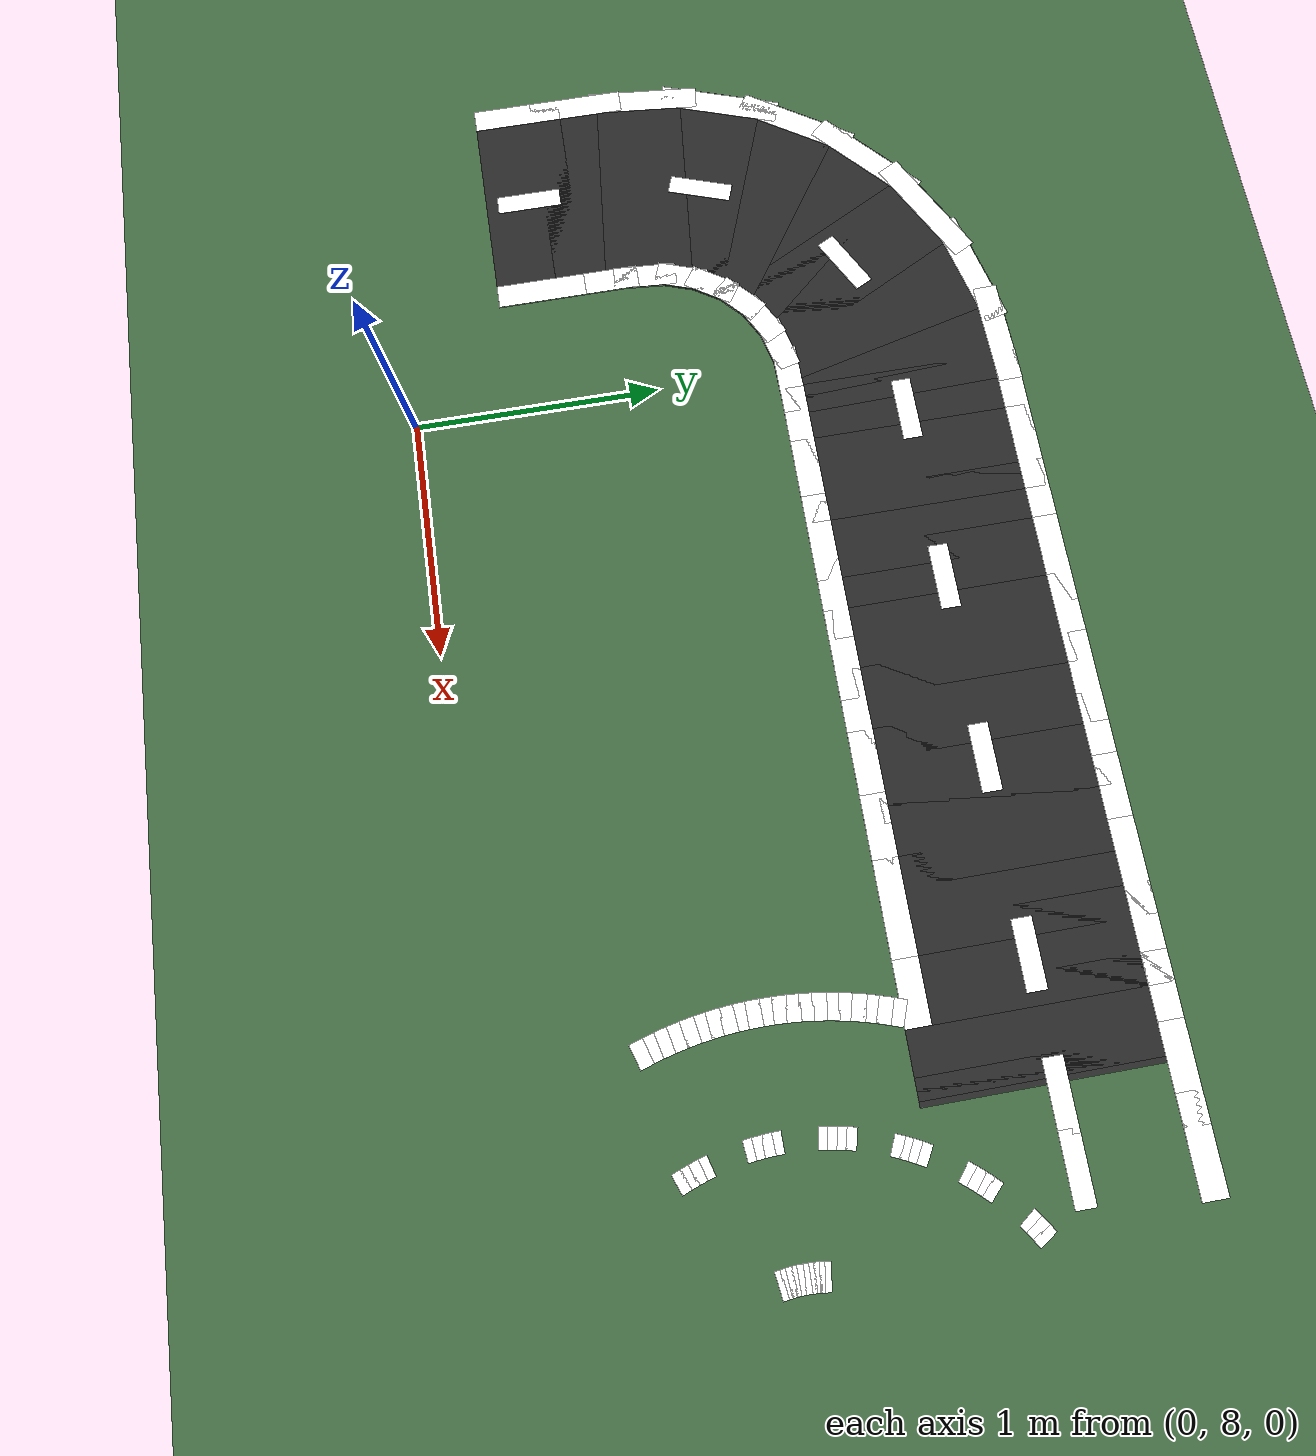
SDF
<sdf version="1.6">
 <world name="university_track">
  <model name="ground_plane">
   <static>true</static>
   <link name="link">
    <collision name="collision">
     <geometry><plane><normal>0 0 1</normal><size>200 200</size></plane></geometry>
    </collision>
    <visual name="visual">
     <geometry><plane><normal>0 0 1</normal><size>200 200</size></plane></geometry>
     <material><ambient>0.25 0.40 0.25 1</ambient><diffuse>0.25 0.40 0.25 1</diffuse></material>
    </visual>
   </link>
  </model>
  <model name="loop_40_0">
   <static>true</static>
   <pose>2.9201 10.0000 0.0020 0 0 3.14159</pose>
   <link name="l">
    <visual name="v">
     <geometry><box><size>0.1037 1.0000 0.0020</size></box></geometry>
     <material><ambient>0.15 0.15 0.15 1</ambient><diffuse>0.15 0.15 0.15 1</diffuse></material>
    </visual>
   </link>
  </model>
  <model name="loop_41_0">
   <static>true</static>
   <pose>2.7652 10.0000 0.0020 0 0 3.14159</pose>
   <link name="l">
    <visual name="v">
     <geometry><box><size>0.3700 1.0000 0.0020</size></box></geometry>
     <material><ambient>0.15 0.15 0.15 1</ambient><diffuse>0.15 0.15 0.15 1</diffuse></material>
    </visual>
   </link>
  </model>
  <model name="loop_42_0">
   <static>true</static>
   <pose>2.5152 10.0000 0.0020 0 0 3.14159</pose>
   <link name="l">
    <visual name="v">
     <geometry><box><size>0.3700 1.0000 0.0020</size></box></geometry>
     <material><ambient>0.15 0.15 0.15 1</ambient><diffuse>0.15 0.15 0.15 1</diffuse></material>
    </visual>
   </link>
  </model>
  <model name="loop_43_0">
   <static>true</static>
   <pose>2.2652 10.0000 0.0020 0 0 3.14159</pose>
   <link name="l">
    <visual name="v">
     <geometry><box><size>0.3700 1.0000 0.0020</size></box></geometry>
     <material><ambient>0.15 0.15 0.15 1</ambient><diffuse>0.15 0.15 0.15 1</diffuse></material>
    </visual>
   </link>
  </model>
  <model name="loop_44_0">
   <static>true</static>
   <pose>2.0152 10.0000 0.0020 0 0 3.14159</pose>
   <link name="l">
    <visual name="v">
     <geometry><box><size>0.3700 1.0000 0.0020</size></box></geometry>
     <material><ambient>0.15 0.15 0.15 1</ambient><diffuse>0.15 0.15 0.15 1</diffuse></material>
    </visual>
   </link>
  </model>
  <model name="loop_45_0">
   <static>true</static>
   <pose>1.7652 10.0000 0.0020 0 0 3.14159</pose>
   <link name="l">
    <visual name="v">
     <geometry><box><size>0.3700 1.0000 0.0020</size></box></geometry>
     <material><ambient>0.15 0.15 0.15 1</ambient><diffuse>0.15 0.15 0.15 1</diffuse></material>
    </visual>
   </link>
  </model>
  <model name="loop_46_0">
   <static>true</static>
   <pose>1.5152 10.0000 0.0020 0 0 3.14159</pose>
   <link name="l">
    <visual name="v">
     <geometry><box><size>0.3700 1.0000 0.0020</size></box></geometry>
     <material><ambient>0.15 0.15 0.15 1</ambient><diffuse>0.15 0.15 0.15 1</diffuse></material>
    </visual>
   </link>
  </model>
  <model name="loop_47_0">
   <static>true</static>
   <pose>1.2652 10.0000 0.0020 0 0 3.14159</pose>
   <link name="l">
    <visual name="v">
     <geometry><box><size>0.3700 1.0000 0.0020</size></box></geometry>
     <material><ambient>0.15 0.15 0.15 1</ambient><diffuse>0.15 0.15 0.15 1</diffuse></material>
    </visual>
   </link>
  </model>
  <model name="loop_48_0">
   <static>true</static>
   <pose>1.0152 10.0000 0.0020 0 0 3.14159</pose>
   <link name="l">
    <visual name="v">
     <geometry><box><size>0.3700 1.0000 0.0020</size></box></geometry>
     <material><ambient>0.15 0.15 0.15 1</ambient><diffuse>0.15 0.15 0.15 1</diffuse></material>
    </visual>
   </link>
  </model>
  <model name="loop_49_0">
   <static>true</static>
   <pose>0.7652 10.0000 0.0020 0 0 3.14159</pose>
   <link name="l">
    <visual name="v">
     <geometry><box><size>0.3700 1.0000 0.0020</size></box></geometry>
     <material><ambient>0.15 0.15 0.15 1</ambient><diffuse>0.15 0.15 0.15 1</diffuse></material>
    </visual>
   </link>
  </model>
  <model name="loop_50_0">
   <static>true</static>
   <pose>0.5152 10.0000 0.0020 0 0 3.14159</pose>
   <link name="l">
    <visual name="v">
     <geometry><box><size>0.3700 1.0000 0.0020</size></box></geometry>
     <material><ambient>0.15 0.15 0.15 1</ambient><diffuse>0.15 0.15 0.15 1</diffuse></material>
    </visual>
   </link>
  </model>
  <model name="loop_51_0">
   <static>true</static>
   <pose>0.2652 10.0000 0.0020 0 0 3.14159</pose>
   <link name="l">
    <visual name="v">
     <geometry><box><size>0.3700 1.0000 0.0020</size></box></geometry>
     <material><ambient>0.15 0.15 0.15 1</ambient><diffuse>0.15 0.15 0.15 1</diffuse></material>
    </visual>
   </link>
  </model>
  <model name="loop_52_0">
   <static>true</static>
   <pose>0.0153 9.9969 0.0020 0 0 -3.11645</pose>
   <link name="l">
    <visual name="v">
     <geometry><box><size>0.3698 1.0000 0.0020</size></box></geometry>
     <material><ambient>0.15 0.15 0.15 1</ambient><diffuse>0.15 0.15 0.15 1</diffuse></material>
    </visual>
   </link>
  </model>
  <model name="loop_53_0">
   <static>true</static>
   <pose>-0.2307 9.9642 0.0020 0 0 -2.90233</pose>
   <link name="l">
    <visual name="v">
     <geometry><box><size>0.3690 1.0000 0.0020</size></box></geometry>
     <material><ambient>0.15 0.15 0.15 1</ambient><diffuse>0.15 0.15 0.15 1</diffuse></material>
    </visual>
   </link>
  </model>
  <model name="loop_54_0">
   <static>true</static>
   <pose>-0.4621 9.8768 0.0020 0 0 -2.65879</pose>
   <link name="l">
    <visual name="v">
     <geometry><box><size>0.3689 1.0000 0.0020</size></box></geometry>
     <material><ambient>0.15 0.15 0.15 1</ambient><diffuse>0.15 0.15 0.15 1</diffuse></material>
    </visual>
   </link>
  </model>
  <model name="loop_55_0">
   <static>true</static>
   <pose>-0.6649 9.7353 0.0020 0 0 -2.40591</pose>
   <link name="l">
    <visual name="v">
     <geometry><box><size>0.3689 1.0000 0.0020</size></box></geometry>
     <material><ambient>0.15 0.15 0.15 1</ambient><diffuse>0.15 0.15 0.15 1</diffuse></material>
    </visual>
   </link>
  </model>
  <model name="loop_56_0">
   <static>true</static>
   <pose>-0.8260 9.5477 0.0020 0 0 -2.15479</pose>
   <link name="l">
    <visual name="v">
     <geometry><box><size>0.3689 1.0000 0.0020</size></box></geometry>
     <material><ambient>0.15 0.15 0.15 1</ambient><diffuse>0.15 0.15 0.15 1</diffuse></material>
    </visual>
   </link>
  </model>
  <model name="loop_57_0">
   <static>true</static>
   <pose>-0.9363 9.3263 0.0020 0 0 -1.91125</pose>
   <link name="l">
    <visual name="v">
     <geometry><box><size>0.3690 1.0000 0.0020</size></box></geometry>
     <material><ambient>0.15 0.15 0.15 1</ambient><diffuse>0.15 0.15 0.15 1</diffuse></material>
    </visual>
   </link>
  </model>
  <model name="loop_58_0">
   <static>true</static>
   <pose>-0.9890 9.0845 0.0020 0 0 -1.65945</pose>
   <link name="l">
    <visual name="v">
     <geometry><box><size>0.3693 1.0000 0.0020</size></box></geometry>
     <material><ambient>0.15 0.15 0.15 1</ambient><diffuse>0.15 0.15 0.15 1</diffuse></material>
    </visual>
   </link>
  </model>
  <model name="loop_59_0">
   <static>true</static>
   <pose>-1.0000 8.8353 0.0020 0 0 -1.57080</pose>
   <link name="l">
    <visual name="v">
     <geometry><box><size>0.3700 1.0000 0.0020</size></box></geometry>
     <material><ambient>0.15 0.15 0.15 1</ambient><diffuse>0.15 0.15 0.15 1</diffuse></material>
    </visual>
   </link>
  </model>
  <model name="loop_60_0">
   <static>true</static>
   <pose>-1.0000 8.5853 0.0020 0 0 -1.57080</pose>
   <link name="l">
    <visual name="v">
     <geometry><box><size>0.3700 1.0000 0.0020</size></box></geometry>
     <material><ambient>0.15 0.15 0.15 1</ambient><diffuse>0.15 0.15 0.15 1</diffuse></material>
    </visual>
   </link>
  </model>
  <model name="loop_le_42_0">
   <static>true</static>
   <pose>2.5152 9.5500 0.0050 0 0 3.14159</pose>
   <link name="l">
    <visual name="v">
     <geometry><box><size>0.3700 0.1000 0.0020</size></box></geometry>
     <material><ambient>1.0 1.0 1.0 1</ambient><diffuse>1.0 1.0 1.0 1</diffuse></material>
    </visual>
   </link>
  </model>
  <model name="loop_le_43_0">
   <static>true</static>
   <pose>2.2652 9.5500 0.0050 0 0 3.14159</pose>
   <link name="l">
    <visual name="v">
     <geometry><box><size>0.3700 0.1000 0.0020</size></box></geometry>
     <material><ambient>1.0 1.0 1.0 1</ambient><diffuse>1.0 1.0 1.0 1</diffuse></material>
    </visual>
   </link>
  </model>
  <model name="loop_le_44_0">
   <static>true</static>
   <pose>2.0152 9.5500 0.0050 0 0 3.14159</pose>
   <link name="l">
    <visual name="v">
     <geometry><box><size>0.3700 0.1000 0.0020</size></box></geometry>
     <material><ambient>1.0 1.0 1.0 1</ambient><diffuse>1.0 1.0 1.0 1</diffuse></material>
    </visual>
   </link>
  </model>
  <model name="loop_le_45_0">
   <static>true</static>
   <pose>1.7652 9.5500 0.0050 0 0 3.14159</pose>
   <link name="l">
    <visual name="v">
     <geometry><box><size>0.3700 0.1000 0.0020</size></box></geometry>
     <material><ambient>1.0 1.0 1.0 1</ambient><diffuse>1.0 1.0 1.0 1</diffuse></material>
    </visual>
   </link>
  </model>
  <model name="loop_le_46_0">
   <static>true</static>
   <pose>1.5152 9.5500 0.0050 0 0 3.14159</pose>
   <link name="l">
    <visual name="v">
     <geometry><box><size>0.3700 0.1000 0.0020</size></box></geometry>
     <material><ambient>1.0 1.0 1.0 1</ambient><diffuse>1.0 1.0 1.0 1</diffuse></material>
    </visual>
   </link>
  </model>
  <model name="loop_le_47_0">
   <static>true</static>
   <pose>1.2652 9.5500 0.0050 0 0 3.14159</pose>
   <link name="l">
    <visual name="v">
     <geometry><box><size>0.3700 0.1000 0.0020</size></box></geometry>
     <material><ambient>1.0 1.0 1.0 1</ambient><diffuse>1.0 1.0 1.0 1</diffuse></material>
    </visual>
   </link>
  </model>
  <model name="loop_le_48_0">
   <static>true</static>
   <pose>1.0152 9.5500 0.0050 0 0 3.14159</pose>
   <link name="l">
    <visual name="v">
     <geometry><box><size>0.3700 0.1000 0.0020</size></box></geometry>
     <material><ambient>1.0 1.0 1.0 1</ambient><diffuse>1.0 1.0 1.0 1</diffuse></material>
    </visual>
   </link>
  </model>
  <model name="loop_le_49_0">
   <static>true</static>
   <pose>0.7652 9.5500 0.0050 0 0 3.14159</pose>
   <link name="l">
    <visual name="v">
     <geometry><box><size>0.3700 0.1000 0.0020</size></box></geometry>
     <material><ambient>1.0 1.0 1.0 1</ambient><diffuse>1.0 1.0 1.0 1</diffuse></material>
    </visual>
   </link>
  </model>
  <model name="loop_le_50_0">
   <static>true</static>
   <pose>0.5152 9.5500 0.0050 0 0 3.14159</pose>
   <link name="l">
    <visual name="v">
     <geometry><box><size>0.3700 0.1000 0.0020</size></box></geometry>
     <material><ambient>1.0 1.0 1.0 1</ambient><diffuse>1.0 1.0 1.0 1</diffuse></material>
    </visual>
   </link>
  </model>
  <model name="loop_le_51_0">
   <static>true</static>
   <pose>0.2680 9.5500 0.0050 0 0 3.14145</pose>
   <link name="l">
    <visual name="v">
     <geometry><box><size>0.3621 0.1000 0.0020</size></box></geometry>
     <material><ambient>1.0 1.0 1.0 1</ambient><diffuse>1.0 1.0 1.0 1</diffuse></material>
    </visual>
   </link>
  </model>
  <model name="loop_le_52_0">
   <static>true</static>
   <pose>0.0478 9.5488 0.0050 0 0 -3.12937</pose>
   <link name="l">
    <visual name="v">
     <geometry><box><size>0.2947 0.1000 0.0020</size></box></geometry>
     <material><ambient>1.0 1.0 1.0 1</ambient><diffuse>1.0 1.0 1.0 1</diffuse></material>
    </visual>
   </link>
  </model>
  <model name="loop_le_53_0">
   <static>true</static>
   <pose>-0.1216 9.5306 0.0050 0 0 -2.90745</pose>
   <link name="l">
    <visual name="v">
     <geometry><box><size>0.2251 0.1000 0.0020</size></box></geometry>
     <material><ambient>1.0 1.0 1.0 1</ambient><diffuse>1.0 1.0 1.0 1</diffuse></material>
    </visual>
   </link>
  </model>
  <model name="loop_le_54_0">
   <static>true</static>
   <pose>-0.2539 9.4818 0.0050 0 0 -2.66067</pose>
   <link name="l">
    <visual name="v">
     <geometry><box><size>0.2129 0.1000 0.0020</size></box></geometry>
     <material><ambient>1.0 1.0 1.0 1</ambient><diffuse>1.0 1.0 1.0 1</diffuse></material>
    </visual>
   </link>
  </model>
  <model name="loop_le_55_0">
   <static>true</static>
   <pose>-0.3654 9.4042 0.0050 0 0 -2.40555</pose>
   <link name="l">
    <visual name="v">
     <geometry><box><size>0.2106 0.1000 0.0020</size></box></geometry>
     <material><ambient>1.0 1.0 1.0 1</ambient><diffuse>1.0 1.0 1.0 1</diffuse></material>
    </visual>
   </link>
  </model>
  <model name="loop_le_56_0">
   <static>true</static>
   <pose>-0.4539 9.3008 0.0050 0 0 -2.15327</pose>
   <link name="l">
    <visual name="v">
     <geometry><box><size>0.2135 0.1000 0.0020</size></box></geometry>
     <material><ambient>1.0 1.0 1.0 1</ambient><diffuse>1.0 1.0 1.0 1</diffuse></material>
    </visual>
   </link>
  </model>
  <model name="loop_le_57_0">
   <static>true</static>
   <pose>-0.5151 9.1781 0.0050 0 0 -1.91294</pose>
   <link name="l">
    <visual name="v">
     <geometry><box><size>0.2133 0.1000 0.0020</size></box></geometry>
     <material><ambient>1.0 1.0 1.0 1</ambient><diffuse>1.0 1.0 1.0 1</diffuse></material>
    </visual>
   </link>
  </model>
  <model name="loop_le_58_0">
   <static>true</static>
   <pose>-0.5443 9.0267 0.0050 0 0 -1.64146</pose>
   <link name="l">
    <visual name="v">
     <geometry><box><size>0.2623 0.1000 0.0020</size></box></geometry>
     <material><ambient>1.0 1.0 1.0 1</ambient><diffuse>1.0 1.0 1.0 1</diffuse></material>
    </visual>
   </link>
  </model>
  <model name="loop_le_59_0">
   <static>true</static>
   <pose>-0.5502 8.8253 0.0050 0 0 -1.56888</pose>
   <link name="l">
    <visual name="v">
     <geometry><box><size>0.3421 0.1000 0.0020</size></box></geometry>
     <material><ambient>1.0 1.0 1.0 1</ambient><diffuse>1.0 1.0 1.0 1</diffuse></material>
    </visual>
   </link>
  </model>
  <model name="loop_le_60_0">
   <static>true</static>
   <pose>-0.5500 8.5853 0.0050 0 0 -1.57080</pose>
   <link name="l">
    <visual name="v">
     <geometry><box><size>0.3700 0.1000 0.0020</size></box></geometry>
     <material><ambient>1.0 1.0 1.0 1</ambient><diffuse>1.0 1.0 1.0 1</diffuse></material>
    </visual>
   </link>
  </model>
  <model name="loop_re_39_0">
   <static>true</static>
   <pose>3.2652 10.4500 0.0050 0 0 3.14159</pose>
   <link name="l">
    <visual name="v">
     <geometry><box><size>0.3700 0.1000 0.0020</size></box></geometry>
     <material><ambient>1.0 1.0 1.0 1</ambient><diffuse>1.0 1.0 1.0 1</diffuse></material>
    </visual>
   </link>
  </model>
  <model name="loop_re_40_0">
   <static>true</static>
   <pose>3.0152 10.4500 0.0050 0 0 3.14159</pose>
   <link name="l">
    <visual name="v">
     <geometry><box><size>0.3700 0.1000 0.0020</size></box></geometry>
     <material><ambient>1.0 1.0 1.0 1</ambient><diffuse>1.0 1.0 1.0 1</diffuse></material>
    </visual>
   </link>
  </model>
  <model name="loop_re_41_0">
   <static>true</static>
   <pose>2.7652 10.4500 0.0050 0 0 3.14159</pose>
   <link name="l">
    <visual name="v">
     <geometry><box><size>0.3700 0.1000 0.0020</size></box></geometry>
     <material><ambient>1.0 1.0 1.0 1</ambient><diffuse>1.0 1.0 1.0 1</diffuse></material>
    </visual>
   </link>
  </model>
  <model name="loop_re_42_0">
   <static>true</static>
   <pose>2.5152 10.4500 0.0050 0 0 3.14159</pose>
   <link name="l">
    <visual name="v">
     <geometry><box><size>0.3700 0.1000 0.0020</size></box></geometry>
     <material><ambient>1.0 1.0 1.0 1</ambient><diffuse>1.0 1.0 1.0 1</diffuse></material>
    </visual>
   </link>
  </model>
  <model name="loop_re_43_0">
   <static>true</static>
   <pose>2.2652 10.4500 0.0050 0 0 3.14159</pose>
   <link name="l">
    <visual name="v">
     <geometry><box><size>0.3700 0.1000 0.0020</size></box></geometry>
     <material><ambient>1.0 1.0 1.0 1</ambient><diffuse>1.0 1.0 1.0 1</diffuse></material>
    </visual>
   </link>
  </model>
  <model name="loop_re_44_0">
   <static>true</static>
   <pose>2.0152 10.4500 0.0050 0 0 3.14159</pose>
   <link name="l">
    <visual name="v">
     <geometry><box><size>0.3700 0.1000 0.0020</size></box></geometry>
     <material><ambient>1.0 1.0 1.0 1</ambient><diffuse>1.0 1.0 1.0 1</diffuse></material>
    </visual>
   </link>
  </model>
  <model name="loop_re_45_0">
   <static>true</static>
   <pose>1.7652 10.4500 0.0050 0 0 3.14159</pose>
   <link name="l">
    <visual name="v">
     <geometry><box><size>0.3700 0.1000 0.0020</size></box></geometry>
     <material><ambient>1.0 1.0 1.0 1</ambient><diffuse>1.0 1.0 1.0 1</diffuse></material>
    </visual>
   </link>
  </model>
  <model name="loop_re_46_0">
   <static>true</static>
   <pose>1.5152 10.4500 0.0050 0 0 3.14159</pose>
   <link name="l">
    <visual name="v">
     <geometry><box><size>0.3700 0.1000 0.0020</size></box></geometry>
     <material><ambient>1.0 1.0 1.0 1</ambient><diffuse>1.0 1.0 1.0 1</diffuse></material>
    </visual>
   </link>
  </model>
  <model name="loop_re_47_0">
   <static>true</static>
   <pose>1.2652 10.4500 0.0050 0 0 3.14159</pose>
   <link name="l">
    <visual name="v">
     <geometry><box><size>0.3700 0.1000 0.0020</size></box></geometry>
     <material><ambient>1.0 1.0 1.0 1</ambient><diffuse>1.0 1.0 1.0 1</diffuse></material>
    </visual>
   </link>
  </model>
  <model name="loop_re_48_0">
   <static>true</static>
   <pose>1.0152 10.4500 0.0050 0 0 3.14159</pose>
   <link name="l">
    <visual name="v">
     <geometry><box><size>0.3700 0.1000 0.0020</size></box></geometry>
     <material><ambient>1.0 1.0 1.0 1</ambient><diffuse>1.0 1.0 1.0 1</diffuse></material>
    </visual>
   </link>
  </model>
  <model name="loop_re_49_0">
   <static>true</static>
   <pose>0.7652 10.4500 0.0050 0 0 3.14159</pose>
   <link name="l">
    <visual name="v">
     <geometry><box><size>0.3700 0.1000 0.0020</size></box></geometry>
     <material><ambient>1.0 1.0 1.0 1</ambient><diffuse>1.0 1.0 1.0 1</diffuse></material>
    </visual>
   </link>
  </model>
  <model name="loop_re_50_0">
   <static>true</static>
   <pose>0.5152 10.4500 0.0050 0 0 3.14159</pose>
   <link name="l">
    <visual name="v">
     <geometry><box><size>0.3700 0.1000 0.0020</size></box></geometry>
     <material><ambient>1.0 1.0 1.0 1</ambient><diffuse>1.0 1.0 1.0 1</diffuse></material>
    </visual>
   </link>
  </model>
  <model name="loop_re_51_0">
   <static>true</static>
   <pose>0.2624 10.4500 0.0050 0 0 -3.14145</pose>
   <link name="l">
    <visual name="v">
     <geometry><box><size>0.3779 0.1000 0.0020</size></box></geometry>
     <material><ambient>1.0 1.0 1.0 1</ambient><diffuse>1.0 1.0 1.0 1</diffuse></material>
    </visual>
   </link>
  </model>
  <model name="loop_re_52_0">
   <static>true</static>
   <pose>-0.0172 10.4449 0.0050 0 0 -3.10810</pose>
   <link name="l">
    <visual name="v">
     <geometry><box><size>0.4450 0.1000 0.0020</size></box></geometry>
     <material><ambient>1.0 1.0 1.0 1</ambient><diffuse>1.0 1.0 1.0 1</diffuse></material>
    </visual>
   </link>
  </model>
  <model name="loop_re_53_0">
   <static>true</static>
   <pose>-0.3398 10.3977 0.0050 0 0 -2.90021</pose>
   <link name="l">
    <visual name="v">
     <geometry><box><size>0.5129 0.1000 0.0020</size></box></geometry>
     <material><ambient>1.0 1.0 1.0 1</ambient><diffuse>1.0 1.0 1.0 1</diffuse></material>
    </visual>
   </link>
  </model>
  <model name="loop_re_54_0">
   <static>true</static>
   <pose>-0.6704 10.2718 0.0050 0 0 -2.65807</pose>
   <link name="l">
    <visual name="v">
     <geometry><box><size>0.5249 0.1000 0.0020</size></box></geometry>
     <material><ambient>1.0 1.0 1.0 1</ambient><diffuse>1.0 1.0 1.0 1</diffuse></material>
    </visual>
   </link>
  </model>
  <model name="loop_re_55_0">
   <static>true</static>
   <pose>-0.9643 10.0664 0.0050 0 0 -2.40605</pose>
   <link name="l">
    <visual name="v">
     <geometry><box><size>0.5272 0.1000 0.0020</size></box></geometry>
     <material><ambient>1.0 1.0 1.0 1</ambient><diffuse>1.0 1.0 1.0 1</diffuse></material>
    </visual>
   </link>
  </model>
  <model name="loop_re_56_0">
   <static>true</static>
   <pose>-1.1981 9.7947 0.0050 0 0 -2.15537</pose>
   <link name="l">
    <visual name="v">
     <geometry><box><size>0.5243 0.1000 0.0020</size></box></geometry>
     <material><ambient>1.0 1.0 1.0 1</ambient><diffuse>1.0 1.0 1.0 1</diffuse></material>
    </visual>
   </link>
  </model>
  <model name="loop_re_57_0">
   <static>true</static>
   <pose>-1.3575 9.4745 0.0050 0 0 -1.91060</pose>
   <link name="l">
    <visual name="v">
     <geometry><box><size>0.5247 0.1000 0.0020</size></box></geometry>
     <material><ambient>1.0 1.0 1.0 1</ambient><diffuse>1.0 1.0 1.0 1</diffuse></material>
    </visual>
   </link>
  </model>
  <model name="loop_re_58_0">
   <static>true</static>
   <pose>-1.4336 9.1424 0.0050 0 0 -1.66901</pose>
   <link name="l">
    <visual name="v">
     <geometry><box><size>0.4764 0.1000 0.0020</size></box></geometry>
     <material><ambient>1.0 1.0 1.0 1</ambient><diffuse>1.0 1.0 1.0 1</diffuse></material>
    </visual>
   </link>
  </model>
  <model name="loop_re_59_0">
   <static>true</static>
   <pose>-1.4498 8.8452 0.0050 0 0 -1.57243</pose>
   <link name="l">
    <visual name="v">
     <geometry><box><size>0.3979 0.1000 0.0020</size></box></geometry>
     <material><ambient>1.0 1.0 1.0 1</ambient><diffuse>1.0 1.0 1.0 1</diffuse></material>
    </visual>
   </link>
  </model>
  <model name="loop_re_60_0">
   <static>true</static>
   <pose>-1.4500 8.5853 0.0050 0 0 -1.57080</pose>
   <link name="l">
    <visual name="v">
     <geometry><box><size>0.3700 0.1000 0.0020</size></box></geometry>
     <material><ambient>1.0 1.0 1.0 1</ambient><diffuse>1.0 1.0 1.0 1</diffuse></material>
    </visual>
   </link>
  </model>
  <model name="loop_cd_42_0">
   <static>true</static>
   <pose>2.5152 10.0000 0.0050 0 0 3.14159</pose>
   <link name="l">
    <visual name="v">
     <geometry><box><size>0.2700 0.0800 0.0020</size></box></geometry>
     <material><ambient>1.0 1.0 1.0 1</ambient><diffuse>1.0 1.0 1.0 1</diffuse></material>
    </visual>
   </link>
  </model>
  <model name="loop_cd_45_0">
   <static>true</static>
   <pose>1.7652 10.0000 0.0050 0 0 3.14159</pose>
   <link name="l">
    <visual name="v">
     <geometry><box><size>0.2700 0.0800 0.0020</size></box></geometry>
     <material><ambient>1.0 1.0 1.0 1</ambient><diffuse>1.0 1.0 1.0 1</diffuse></material>
    </visual>
   </link>
  </model>
  <model name="loop_cd_48_0">
   <static>true</static>
   <pose>1.0152 10.0000 0.0050 0 0 3.14159</pose>
   <link name="l">
    <visual name="v">
     <geometry><box><size>0.2700 0.0800 0.0020</size></box></geometry>
     <material><ambient>1.0 1.0 1.0 1</ambient><diffuse>1.0 1.0 1.0 1</diffuse></material>
    </visual>
   </link>
  </model>
  <model name="loop_cd_51_0">
   <static>true</static>
   <pose>0.2652 10.0000 0.0050 0 0 3.14159</pose>
   <link name="l">
    <visual name="v">
     <geometry><box><size>0.2700 0.0800 0.0020</size></box></geometry>
     <material><ambient>1.0 1.0 1.0 1</ambient><diffuse>1.0 1.0 1.0 1</diffuse></material>
    </visual>
   </link>
  </model>
  <model name="loop_cd_54_0">
   <static>true</static>
   <pose>-0.4621 9.8768 0.0050 0 0 -2.65879</pose>
   <link name="l">
    <visual name="v">
     <geometry><box><size>0.2692 0.0800 0.0020</size></box></geometry>
     <material><ambient>1.0 1.0 1.0 1</ambient><diffuse>1.0 1.0 1.0 1</diffuse></material>
    </visual>
   </link>
  </model>
  <model name="loop_cd_57_0">
   <static>true</static>
   <pose>-0.9363 9.3263 0.0050 0 0 -1.91125</pose>
   <link name="l">
    <visual name="v">
     <geometry><box><size>0.2693 0.0800 0.0020</size></box></geometry>
     <material><ambient>1.0 1.0 1.0 1</ambient><diffuse>1.0 1.0 1.0 1</diffuse></material>
    </visual>
   </link>
  </model>
  <model name="loop_cd_60_0">
   <static>true</static>
   <pose>-1.0000 8.5853 0.0050 0 0 -1.57080</pose>
   <link name="l">
    <visual name="v">
     <geometry><box><size>0.2700 0.0800 0.0020</size></box></geometry>
     <material><ambient>1.0 1.0 1.0 1</ambient><diffuse>1.0 1.0 1.0 1</diffuse></material>
    </visual>
   </link>
  </model>
  <model name="loop_rb_cd_join_39">
   <static>true</static>
   <pose>3.2652 10.0000 0.0060 0 0 3.14159</pose>
   <link name="l">
    <visual name="v">
     <geometry><box><size>0.2700 0.0800 0.0020</size></box></geometry>
     <material><ambient>1.0 1.0 1.0 1</ambient><diffuse>1.0 1.0 1.0 1</diffuse></material>
    </visual>
   </link>
  </model>
  <model name="loop_rb_cd_join_40">
   <static>true</static>
   <pose>3.0152 10.0000 0.0060 0 0 3.14159</pose>
   <link name="l">
    <visual name="v">
     <geometry><box><size>0.2700 0.0800 0.0020</size></box></geometry>
     <material><ambient>1.0 1.0 1.0 1</ambient><diffuse>1.0 1.0 1.0 1</diffuse></material>
    </visual>
   </link>
  </model>
  <model name="roundabout_inner_line_91">
   <static>true</static>
   <pose>3.4560 9.0807 0.0050 0 0 4.56513</pose>
   <link name="l">
    <visual name="v">
     <geometry><box><size>0.0224 0.1000 0.0020</size></box></geometry>
     <material><ambient>1.0 1.0 1.0 1</ambient><diffuse>1.0 1.0 1.0 1</diffuse></material>
    </visual>
   </link>
  </model>
  <model name="roundabout_inner_line_92">
   <static>true</static>
   <pose>3.4537 9.0628 0.0050 0 0 4.59785</pose>
   <link name="l">
    <visual name="v">
     <geometry><box><size>0.0224 0.1000 0.0020</size></box></geometry>
     <material><ambient>1.0 1.0 1.0 1</ambient><diffuse>1.0 1.0 1.0 1</diffuse></material>
    </visual>
   </link>
  </model>
  <model name="roundabout_inner_line_93">
   <static>true</static>
   <pose>3.4519 9.0449 0.0050 0 0 4.63058</pose>
   <link name="l">
    <visual name="v">
     <geometry><box><size>0.0224 0.1000 0.0020</size></box></geometry>
     <material><ambient>1.0 1.0 1.0 1</ambient><diffuse>1.0 1.0 1.0 1</diffuse></material>
    </visual>
   </link>
  </model>
  <model name="roundabout_inner_line_94">
   <static>true</static>
   <pose>3.4507 9.0270 0.0050 0 0 4.66330</pose>
   <link name="l">
    <visual name="v">
     <geometry><box><size>0.0224 0.1000 0.0020</size></box></geometry>
     <material><ambient>1.0 1.0 1.0 1</ambient><diffuse>1.0 1.0 1.0 1</diffuse></material>
    </visual>
   </link>
  </model>
  <model name="roundabout_inner_line_95">
   <static>true</static>
   <pose>3.4501 9.0090 0.0050 0 0 4.69603</pose>
   <link name="l">
    <visual name="v">
     <geometry><box><size>0.0224 0.1000 0.0020</size></box></geometry>
     <material><ambient>1.0 1.0 1.0 1</ambient><diffuse>1.0 1.0 1.0 1</diffuse></material>
    </visual>
   </link>
  </model>
  <model name="roundabout_inner_line_96">
   <static>true</static>
   <pose>3.4501 8.9910 0.0050 0 0 4.72875</pose>
   <link name="l">
    <visual name="v">
     <geometry><box><size>0.0224 0.1000 0.0020</size></box></geometry>
     <material><ambient>1.0 1.0 1.0 1</ambient><diffuse>1.0 1.0 1.0 1</diffuse></material>
    </visual>
   </link>
  </model>
  <model name="roundabout_inner_line_97">
   <static>true</static>
   <pose>3.4507 8.9730 0.0050 0 0 4.76148</pose>
   <link name="l">
    <visual name="v">
     <geometry><box><size>0.0224 0.1000 0.0020</size></box></geometry>
     <material><ambient>1.0 1.0 1.0 1</ambient><diffuse>1.0 1.0 1.0 1</diffuse></material>
    </visual>
   </link>
  </model>
  <model name="roundabout_inner_line_98">
   <static>true</static>
   <pose>3.4519 8.9551 0.0050 0 0 4.79420</pose>
   <link name="l">
    <visual name="v">
     <geometry><box><size>0.0224 0.1000 0.0020</size></box></geometry>
     <material><ambient>1.0 1.0 1.0 1</ambient><diffuse>1.0 1.0 1.0 1</diffuse></material>
    </visual>
   </link>
  </model>
  <model name="roundabout_inner_line_99">
   <static>true</static>
   <pose>3.4537 8.9372 0.0050 0 0 4.82693</pose>
   <link name="l">
    <visual name="v">
     <geometry><box><size>0.0224 0.1000 0.0020</size></box></geometry>
     <material><ambient>1.0 1.0 1.0 1</ambient><diffuse>1.0 1.0 1.0 1</diffuse></material>
    </visual>
   </link>
  </model>
  <model name="roundabout_inner_line_100">
   <static>true</static>
   <pose>3.4560 8.9193 0.0050 0 0 4.85965</pose>
   <link name="l">
    <visual name="v">
     <geometry><box><size>0.0224 0.1000 0.0020</size></box></geometry>
     <material><ambient>1.0 1.0 1.0 1</ambient><diffuse>1.0 1.0 1.0 1</diffuse></material>
    </visual>
   </link>
  </model>
  <model name="roundabout_outer_line_85">
   <static>true</static>
   <pose>2.6349 9.4884 0.0050 0 0 4.36878</pose>
   <link name="l">
    <visual name="v">
     <geometry><box><size>0.0542 0.1000 0.0020</size></box></geometry>
     <material><ambient>1.0 1.0 1.0 1</ambient><diffuse>1.0 1.0 1.0 1</diffuse></material>
    </visual>
   </link>
  </model>
  <model name="roundabout_outer_line_86">
   <static>true</static>
   <pose>2.6197 9.4435 0.0050 0 0 4.40150</pose>
   <link name="l">
    <visual name="v">
     <geometry><box><size>0.0542 0.1000 0.0020</size></box></geometry>
     <material><ambient>1.0 1.0 1.0 1</ambient><diffuse>1.0 1.0 1.0 1</diffuse></material>
    </visual>
   </link>
  </model>
  <model name="roundabout_outer_line_87">
   <static>true</static>
   <pose>2.6059 9.3981 0.0050 0 0 4.43423</pose>
   <link name="l">
    <visual name="v">
     <geometry><box><size>0.0542 0.1000 0.0020</size></box></geometry>
     <material><ambient>1.0 1.0 1.0 1</ambient><diffuse>1.0 1.0 1.0 1</diffuse></material>
    </visual>
   </link>
  </model>
  <model name="roundabout_outer_line_88">
   <static>true</static>
   <pose>2.5936 9.3523 0.0050 0 0 4.46695</pose>
   <link name="l">
    <visual name="v">
     <geometry><box><size>0.0542 0.1000 0.0020</size></box></geometry>
     <material><ambient>1.0 1.0 1.0 1</ambient><diffuse>1.0 1.0 1.0 1</diffuse></material>
    </visual>
   </link>
  </model>
  <model name="roundabout_outer_line_89">
   <static>true</static>
   <pose>2.5829 9.3061 0.0050 0 0 4.49968</pose>
   <link name="l">
    <visual name="v">
     <geometry><box><size>0.0542 0.1000 0.0020</size></box></geometry>
     <material><ambient>1.0 1.0 1.0 1</ambient><diffuse>1.0 1.0 1.0 1</diffuse></material>
    </visual>
   </link>
  </model>
  <model name="roundabout_outer_line_90">
   <static>true</static>
   <pose>2.5736 9.2595 0.0050 0 0 4.53240</pose>
   <link name="l">
    <visual name="v">
     <geometry><box><size>0.0542 0.1000 0.0020</size></box></geometry>
     <material><ambient>1.0 1.0 1.0 1</ambient><diffuse>1.0 1.0 1.0 1</diffuse></material>
    </visual>
   </link>
  </model>
  <model name="roundabout_outer_line_91">
   <static>true</static>
   <pose>2.5659 9.2127 0.0050 0 0 4.56513</pose>
   <link name="l">
    <visual name="v">
     <geometry><box><size>0.0542 0.1000 0.0020</size></box></geometry>
     <material><ambient>1.0 1.0 1.0 1</ambient><diffuse>1.0 1.0 1.0 1</diffuse></material>
    </visual>
   </link>
  </model>
  <model name="roundabout_outer_line_92">
   <static>true</static>
   <pose>2.5597 9.1657 0.0050 0 0 4.59785</pose>
   <link name="l">
    <visual name="v">
     <geometry><box><size>0.0542 0.1000 0.0020</size></box></geometry>
     <material><ambient>1.0 1.0 1.0 1</ambient><diffuse>1.0 1.0 1.0 1</diffuse></material>
    </visual>
   </link>
  </model>
  <model name="roundabout_outer_line_93">
   <static>true</static>
   <pose>2.5550 9.1185 0.0050 0 0 4.63058</pose>
   <link name="l">
    <visual name="v">
     <geometry><box><size>0.0542 0.1000 0.0020</size></box></geometry>
     <material><ambient>1.0 1.0 1.0 1</ambient><diffuse>1.0 1.0 1.0 1</diffuse></material>
    </visual>
   </link>
  </model>
  <model name="roundabout_outer_line_94">
   <static>true</static>
   <pose>2.5519 9.0711 0.0050 0 0 4.66330</pose>
   <link name="l">
    <visual name="v">
     <geometry><box><size>0.0542 0.1000 0.0020</size></box></geometry>
     <material><ambient>1.0 1.0 1.0 1</ambient><diffuse>1.0 1.0 1.0 1</diffuse></material>
    </visual>
   </link>
  </model>
  <model name="roundabout_outer_line_95">
   <static>true</static>
   <pose>2.5504 9.0237 0.0050 0 0 4.69603</pose>
   <link name="l">
    <visual name="v">
     <geometry><box><size>0.0542 0.1000 0.0020</size></box></geometry>
     <material><ambient>1.0 1.0 1.0 1</ambient><diffuse>1.0 1.0 1.0 1</diffuse></material>
    </visual>
   </link>
  </model>
  <model name="roundabout_outer_line_96">
   <static>true</static>
   <pose>2.5504 8.9763 0.0050 0 0 4.72875</pose>
   <link name="l">
    <visual name="v">
     <geometry><box><size>0.0542 0.1000 0.0020</size></box></geometry>
     <material><ambient>1.0 1.0 1.0 1</ambient><diffuse>1.0 1.0 1.0 1</diffuse></material>
    </visual>
   </link>
  </model>
  <model name="roundabout_outer_line_97">
   <static>true</static>
   <pose>2.5519 8.9289 0.0050 0 0 4.76148</pose>
   <link name="l">
    <visual name="v">
     <geometry><box><size>0.0542 0.1000 0.0020</size></box></geometry>
     <material><ambient>1.0 1.0 1.0 1</ambient><diffuse>1.0 1.0 1.0 1</diffuse></material>
    </visual>
   </link>
  </model>
  <model name="roundabout_outer_line_98">
   <static>true</static>
   <pose>2.5550 8.8815 0.0050 0 0 4.79420</pose>
   <link name="l">
    <visual name="v">
     <geometry><box><size>0.0542 0.1000 0.0020</size></box></geometry>
     <material><ambient>1.0 1.0 1.0 1</ambient><diffuse>1.0 1.0 1.0 1</diffuse></material>
    </visual>
   </link>
  </model>
  <model name="roundabout_outer_line_99">
   <static>true</static>
   <pose>2.5597 8.8343 0.0050 0 0 4.82693</pose>
   <link name="l">
    <visual name="v">
     <geometry><box><size>0.0542 0.1000 0.0020</size></box></geometry>
     <material><ambient>1.0 1.0 1.0 1</ambient><diffuse>1.0 1.0 1.0 1</diffuse></material>
    </visual>
   </link>
  </model>
  <model name="roundabout_outer_line_100">
   <static>true</static>
   <pose>2.5659 8.7873 0.0050 0 0 4.85965</pose>
   <link name="l">
    <visual name="v">
     <geometry><box><size>0.0542 0.1000 0.0020</size></box></geometry>
     <material><ambient>1.0 1.0 1.0 1</ambient><diffuse>1.0 1.0 1.0 1</diffuse></material>
    </visual>
   </link>
  </model>
  <model name="roundabout_outer_line_101">
   <static>true</static>
   <pose>2.5736 8.7405 0.0050 0 0 4.89238</pose>
   <link name="l">
    <visual name="v">
     <geometry><box><size>0.0542 0.1000 0.0020</size></box></geometry>
     <material><ambient>1.0 1.0 1.0 1</ambient><diffuse>1.0 1.0 1.0 1</diffuse></material>
    </visual>
   </link>
  </model>
  <model name="roundabout_outer_line_102">
   <static>true</static>
   <pose>2.5829 8.6939 0.0050 0 0 4.92510</pose>
   <link name="l">
    <visual name="v">
     <geometry><box><size>0.0542 0.1000 0.0020</size></box></geometry>
     <material><ambient>1.0 1.0 1.0 1</ambient><diffuse>1.0 1.0 1.0 1</diffuse></material>
    </visual>
   </link>
  </model>
  <model name="roundabout_outer_line_103">
   <static>true</static>
   <pose>2.5936 8.6477 0.0050 0 0 4.95783</pose>
   <link name="l">
    <visual name="v">
     <geometry><box><size>0.0542 0.1000 0.0020</size></box></geometry>
     <material><ambient>1.0 1.0 1.0 1</ambient><diffuse>1.0 1.0 1.0 1</diffuse></material>
    </visual>
   </link>
  </model>
  <model name="roundabout_outer_line_104">
   <static>true</static>
   <pose>2.6059 8.6019 0.0050 0 0 4.99055</pose>
   <link name="l">
    <visual name="v">
     <geometry><box><size>0.0542 0.1000 0.0020</size></box></geometry>
     <material><ambient>1.0 1.0 1.0 1</ambient><diffuse>1.0 1.0 1.0 1</diffuse></material>
    </visual>
   </link>
  </model>
  <model name="roundabout_outer_line_105">
   <static>true</static>
   <pose>2.6197 8.5565 0.0050 0 0 5.02328</pose>
   <link name="l">
    <visual name="v">
     <geometry><box><size>0.0542 0.1000 0.0020</size></box></geometry>
     <material><ambient>1.0 1.0 1.0 1</ambient><diffuse>1.0 1.0 1.0 1</diffuse></material>
    </visual>
   </link>
  </model>
  <model name="roundabout_center_dash_65">
   <static>true</static>
   <pose>3.4582 9.8403 0.0060 0 0 3.71428</pose>
   <link name="l">
    <visual name="v">
     <geometry><box><size>0.0383 0.0800 0.0020</size></box></geometry>
     <material><ambient>1.0 1.0 1.0 1</ambient><diffuse>1.0 1.0 1.0 1</diffuse></material>
    </visual>
   </link>
  </model>
  <model name="roundabout_center_dash_66">
   <static>true</static>
   <pose>3.4310 9.8222 0.0060 0 0 3.74700</pose>
   <link name="l">
    <visual name="v">
     <geometry><box><size>0.0383 0.0800 0.0020</size></box></geometry>
     <material><ambient>1.0 1.0 1.0 1</ambient><diffuse>1.0 1.0 1.0 1</diffuse></material>
    </visual>
   </link>
  </model>
  <model name="roundabout_center_dash_67">
   <static>true</static>
   <pose>3.4044 9.8031 0.0060 0 0 3.77973</pose>
   <link name="l">
    <visual name="v">
     <geometry><box><size>0.0383 0.0800 0.0020</size></box></geometry>
     <material><ambient>1.0 1.0 1.0 1</ambient><diffuse>1.0 1.0 1.0 1</diffuse></material>
    </visual>
   </link>
  </model>
  <model name="roundabout_center_dash_72">
   <static>true</static>
   <pose>3.2815 9.6953 0.0060 0 0 3.94335</pose>
   <link name="l">
    <visual name="v">
     <geometry><box><size>0.0383 0.0800 0.0020</size></box></geometry>
     <material><ambient>1.0 1.0 1.0 1</ambient><diffuse>1.0 1.0 1.0 1</diffuse></material>
    </visual>
   </link>
  </model>
  <model name="roundabout_center_dash_73">
   <static>true</static>
   <pose>3.2591 9.6715 0.0060 0 0 3.97608</pose>
   <link name="l">
    <visual name="v">
     <geometry><box><size>0.0383 0.0800 0.0020</size></box></geometry>
     <material><ambient>1.0 1.0 1.0 1</ambient><diffuse>1.0 1.0 1.0 1</diffuse></material>
    </visual>
   </link>
  </model>
  <model name="roundabout_center_dash_74">
   <static>true</static>
   <pose>3.2376 9.6469 0.0060 0 0 4.00880</pose>
   <link name="l">
    <visual name="v">
     <geometry><box><size>0.0383 0.0800 0.0020</size></box></geometry>
     <material><ambient>1.0 1.0 1.0 1</ambient><diffuse>1.0 1.0 1.0 1</diffuse></material>
    </visual>
   </link>
  </model>
  <model name="roundabout_center_dash_75">
   <static>true</static>
   <pose>3.2168 9.6216 0.0060 0 0 4.04153</pose>
   <link name="l">
    <visual name="v">
     <geometry><box><size>0.0383 0.0800 0.0020</size></box></geometry>
     <material><ambient>1.0 1.0 1.0 1</ambient><diffuse>1.0 1.0 1.0 1</diffuse></material>
    </visual>
   </link>
  </model>
  <model name="roundabout_center_dash_80">
   <static>true</static>
   <pose>3.1260 9.4857 0.0060 0 0 4.20515</pose>
   <link name="l">
    <visual name="v">
     <geometry><box><size>0.0383 0.0800 0.0020</size></box></geometry>
     <material><ambient>1.0 1.0 1.0 1</ambient><diffuse>1.0 1.0 1.0 1</diffuse></material>
    </visual>
   </link>
  </model>
  <model name="roundabout_center_dash_81">
   <static>true</static>
   <pose>3.1106 9.4568 0.0060 0 0 4.23788</pose>
   <link name="l">
    <visual name="v">
     <geometry><box><size>0.0383 0.0800 0.0020</size></box></geometry>
     <material><ambient>1.0 1.0 1.0 1</ambient><diffuse>1.0 1.0 1.0 1</diffuse></material>
    </visual>
   </link>
  </model>
  <model name="roundabout_center_dash_82">
   <static>true</static>
   <pose>3.0961 9.4275 0.0060 0 0 4.27060</pose>
   <link name="l">
    <visual name="v">
     <geometry><box><size>0.0383 0.0800 0.0020</size></box></geometry>
     <material><ambient>1.0 1.0 1.0 1</ambient><diffuse>1.0 1.0 1.0 1</diffuse></material>
    </visual>
   </link>
  </model>
  <model name="roundabout_center_dash_83">
   <static>true</static>
   <pose>3.0826 9.3977 0.0060 0 0 4.30333</pose>
   <link name="l">
    <visual name="v">
     <geometry><box><size>0.0383 0.0800 0.0020</size></box></geometry>
     <material><ambient>1.0 1.0 1.0 1</ambient><diffuse>1.0 1.0 1.0 1</diffuse></material>
    </visual>
   </link>
  </model>
  <model name="roundabout_center_dash_88">
   <static>true</static>
   <pose>3.0301 9.2429 0.0060 0 0 4.46695</pose>
   <link name="l">
    <visual name="v">
     <geometry><box><size>0.0383 0.0800 0.0020</size></box></geometry>
     <material><ambient>1.0 1.0 1.0 1</ambient><diffuse>1.0 1.0 1.0 1</diffuse></material>
    </visual>
   </link>
  </model>
  <model name="roundabout_center_dash_89">
   <static>true</static>
   <pose>3.0227 9.2111 0.0060 0 0 4.49968</pose>
   <link name="l">
    <visual name="v">
     <geometry><box><size>0.0383 0.0800 0.0020</size></box></geometry>
     <material><ambient>1.0 1.0 1.0 1</ambient><diffuse>1.0 1.0 1.0 1</diffuse></material>
    </visual>
   </link>
  </model>
  <model name="roundabout_center_dash_90">
   <static>true</static>
   <pose>3.0163 9.1790 0.0060 0 0 4.53240</pose>
   <link name="l">
    <visual name="v">
     <geometry><box><size>0.0383 0.0800 0.0020</size></box></geometry>
     <material><ambient>1.0 1.0 1.0 1</ambient><diffuse>1.0 1.0 1.0 1</diffuse></material>
    </visual>
   </link>
  </model>
  <model name="roundabout_center_dash_91">
   <static>true</static>
   <pose>3.0110 9.1467 0.0060 0 0 4.56513</pose>
   <link name="l">
    <visual name="v">
     <geometry><box><size>0.0383 0.0800 0.0020</size></box></geometry>
     <material><ambient>1.0 1.0 1.0 1</ambient><diffuse>1.0 1.0 1.0 1</diffuse></material>
    </visual>
   </link>
  </model>
  <model name="roundabout_center_dash_96">
   <static>true</static>
   <pose>3.0003 8.9836 0.0060 0 0 4.72875</pose>
   <link name="l">
    <visual name="v">
     <geometry><box><size>0.0383 0.0800 0.0020</size></box></geometry>
     <material><ambient>1.0 1.0 1.0 1</ambient><diffuse>1.0 1.0 1.0 1</diffuse></material>
    </visual>
   </link>
  </model>
  <model name="roundabout_center_dash_97">
   <static>true</static>
   <pose>3.0013 8.9509 0.0060 0 0 4.76148</pose>
   <link name="l">
    <visual name="v">
     <geometry><box><size>0.0383 0.0800 0.0020</size></box></geometry>
     <material><ambient>1.0 1.0 1.0 1</ambient><diffuse>1.0 1.0 1.0 1</diffuse></material>
    </visual>
   </link>
  </model>
  <model name="roundabout_center_dash_98">
   <static>true</static>
   <pose>3.0035 8.9183 0.0060 0 0 4.79420</pose>
   <link name="l">
    <visual name="v">
     <geometry><box><size>0.0383 0.0800 0.0020</size></box></geometry>
     <material><ambient>1.0 1.0 1.0 1</ambient><diffuse>1.0 1.0 1.0 1</diffuse></material>
    </visual>
   </link>
  </model>
  <model name="roundabout_center_dash_99">
   <static>true</static>
   <pose>3.0067 8.8857 0.0060 0 0 4.82693</pose>
   <link name="l">
    <visual name="v">
     <geometry><box><size>0.0383 0.0800 0.0020</size></box></geometry>
     <material><ambient>1.0 1.0 1.0 1</ambient><diffuse>1.0 1.0 1.0 1</diffuse></material>
    </visual>
   </link>
  </model>
  <model name="roundabout_center_dash_104">
   <static>true</static>
   <pose>3.0386 8.7254 0.0060 0 0 4.99055</pose>
   <link name="l">
    <visual name="v">
     <geometry><box><size>0.0383 0.0800 0.0020</size></box></geometry>
     <material><ambient>1.0 1.0 1.0 1</ambient><diffuse>1.0 1.0 1.0 1</diffuse></material>
    </visual>
   </link>
  </model>
  <model name="roundabout_center_dash_105">
   <static>true</static>
   <pose>3.0481 8.6941 0.0060 0 0 5.02328</pose>
   <link name="l">
    <visual name="v">
     <geometry><box><size>0.0383 0.0800 0.0020</size></box></geometry>
     <material><ambient>1.0 1.0 1.0 1</ambient><diffuse>1.0 1.0 1.0 1</diffuse></material>
    </visual>
   </link>
  </model>
  <model name="roundabout_center_dash_106">
   <static>true</static>
   <pose>3.0586 8.6632 0.0060 0 0 5.05600</pose>
   <link name="l">
    <visual name="v">
     <geometry><box><size>0.0383 0.0800 0.0020</size></box></geometry>
     <material><ambient>1.0 1.0 1.0 1</ambient><diffuse>1.0 1.0 1.0 1</diffuse></material>
    </visual>
   </link>
  </model>
  <model name="roundabout_center_dash_107">
   <static>true</static>
   <pose>3.0701 8.6325 0.0060 0 0 5.08873</pose>
   <link name="l">
    <visual name="v">
     <geometry><box><size>0.0383 0.0800 0.0020</size></box></geometry>
     <material><ambient>1.0 1.0 1.0 1</ambient><diffuse>1.0 1.0 1.0 1</diffuse></material>
    </visual>
   </link>
  </model>
 </world>
</sdf>
